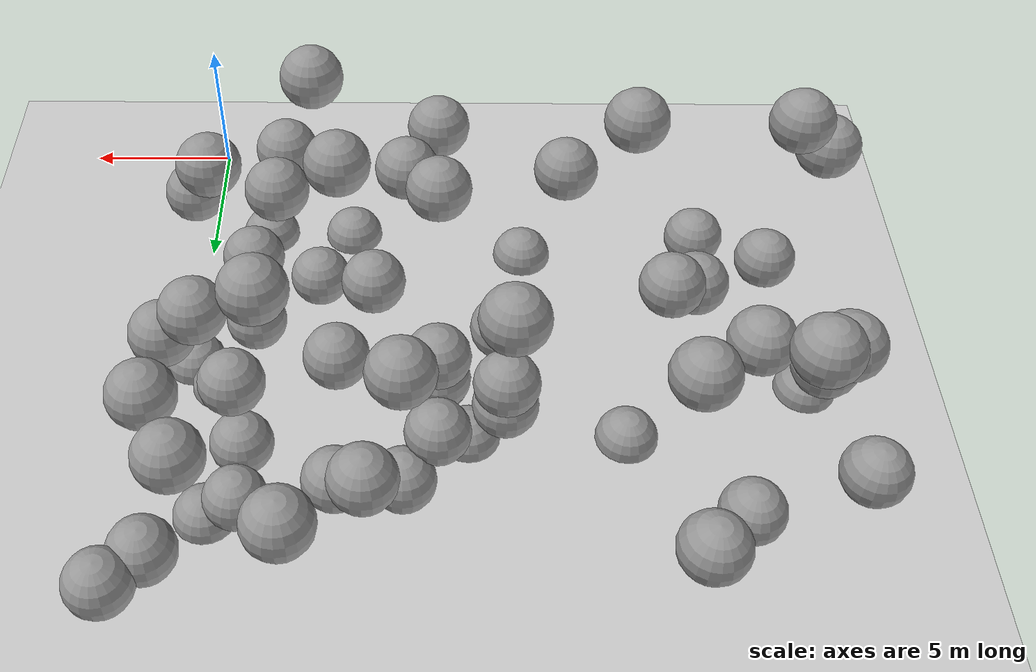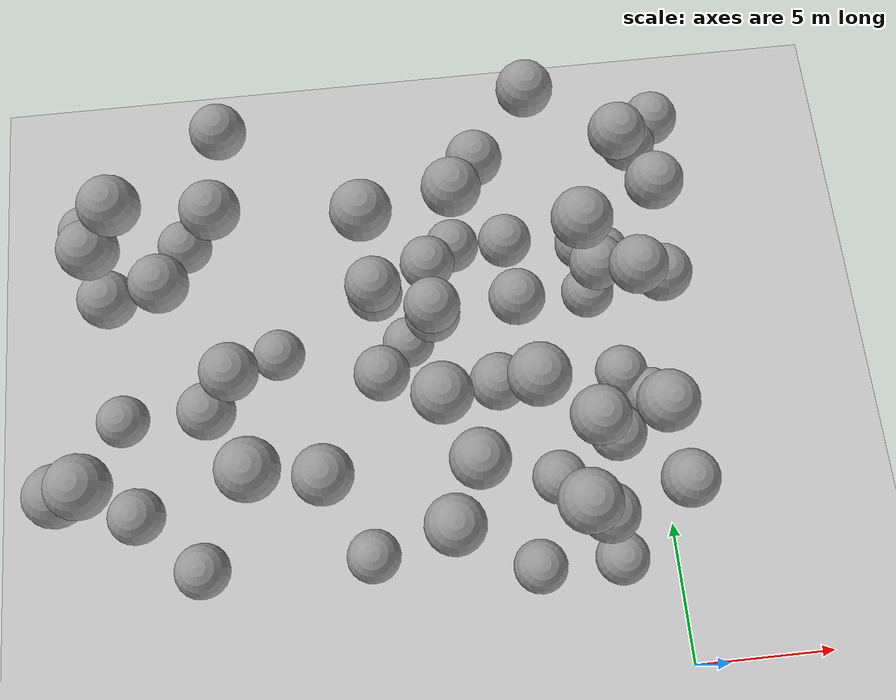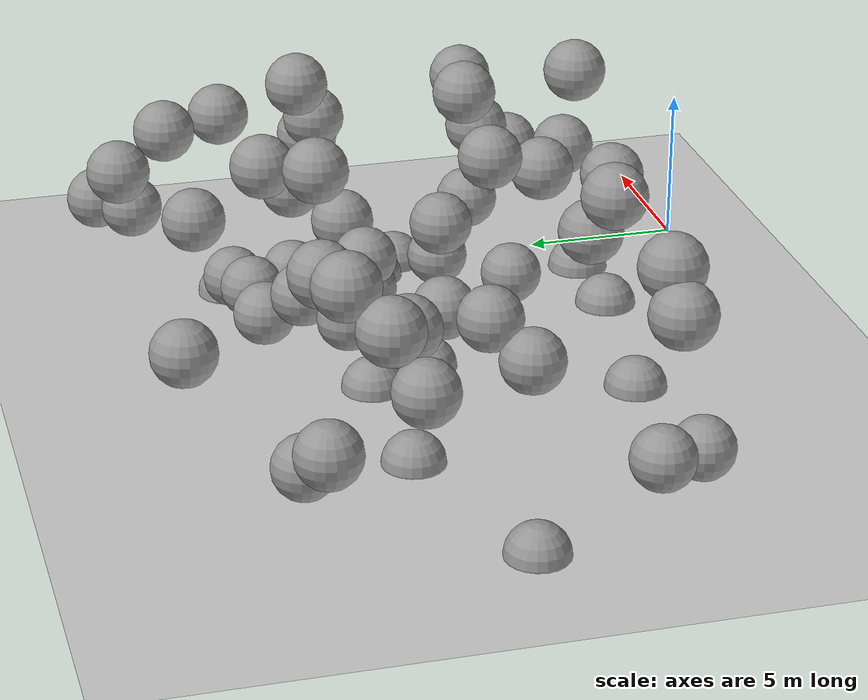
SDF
<sdf version="1.7">
 <world name="default">
  <model name="ground_plane">
   <static>1</static>
   <link name="link">
    <collision name="collision">
     <geometry><plane><normal>0 0 1</normal><size>100 100</size></plane></geometry>
     <surface>
      <contact><collide_bitmask>65535</collide_bitmask></contact>
      <friction><ode><mu>100</mu><mu2>50</mu2></ode></friction>
     </surface>
    </collision>
    <visual name="visual">
     <cast_shadows>0</cast_shadows>
     <geometry><plane><normal>0 0 1</normal><size>100 100</size></plane></geometry>
     <material>
      <script><uri>file://media/materials/scripts/gazebo.material</uri><name>Gazebo/Grey</name></script>
     </material>
    </visual>
   </link>
  </model>
  <model name="sphere_1">
   <static>1</static>
   <pose>-20 11 0 0 0 0</pose>
   <link name="link">
    <inertial>
     <mass>418.87902047863906</mass>
     <inertia>
      <ixx>167.55160819145564</ixx>
      <iyy>167.55160819145564</iyy>
      <izz>167.55160819145564</izz>
      <ixy>0</ixy>
      <ixz>0</ixz>
      <iyz>0</iyz>
     </inertia>
    </inertial>
    <collision name="collision"><geometry><sphere><radius>1.0</radius></sphere></geometry></collision>
    <visual name="visual">
     <geometry><sphere><radius>1.0</radius></sphere></geometry>
     <material>
      <script><uri>file://media/materials/scripts/gazebo.material</uri><name>Gazebo/Grey</name></script>
     </material>
    </visual>
   </link>
  </model>
  <model name="sphere_4">
   <static>1</static>
   <pose>-4 5 8 0 0 0</pose>
   <link name="link">
    <inertial>
     <mass>418.87902047863906</mass>
     <inertia>
      <ixx>167.55160819145564</ixx>
      <iyy>167.55160819145564</iyy>
      <izz>167.55160819145564</izz>
      <ixy>0</ixy>
      <ixz>0</ixz>
      <iyz>0</iyz>
     </inertia>
    </inertial>
    <collision name="collision"><geometry><sphere><radius>1.0</radius></sphere></geometry></collision>
    <visual name="visual">
     <geometry><sphere><radius>1.0</radius></sphere></geometry>
     <material>
      <script><uri>file://media/materials/scripts/gazebo.material</uri><name>Gazebo/Grey</name></script>
     </material>
    </visual>
   </link>
  </model>
  <model name="sphere_5">
   <static>1</static>
   <pose>-8 11 0 0 0 0</pose>
   <link name="link">
    <inertial>
     <mass>418.87902047863906</mass>
     <inertia>
      <ixx>167.55160819145564</ixx>
      <iyy>167.55160819145564</iyy>
      <izz>167.55160819145564</izz>
      <ixy>0</ixy>
      <ixz>0</ixz>
      <iyz>0</iyz>
     </inertia>
    </inertial>
    <collision name="collision"><geometry><sphere><radius>1.0</radius></sphere></geometry></collision>
    <visual name="visual">
     <geometry><sphere><radius>1.0</radius></sphere></geometry>
     <material>
      <script><uri>file://media/materials/scripts/gazebo.material</uri><name>Gazebo/Grey</name></script>
     </material>
    </visual>
   </link>
  </model>
  <model name="sphere_7">
   <static>1</static>
   <pose>-2 4 0 0 0 0</pose>
   <link name="link">
    <inertial>
     <mass>418.87902047863906</mass>
     <inertia>
      <ixx>167.55160819145564</ixx>
      <iyy>167.55160819145564</iyy>
      <izz>167.55160819145564</izz>
      <ixy>0</ixy>
      <ixz>0</ixz>
      <iyz>0</iyz>
     </inertia>
    </inertial>
    <collision name="collision"><geometry><sphere><radius>1.0</radius></sphere></geometry></collision>
    <visual name="visual">
     <geometry><sphere><radius>1.0</radius></sphere></geometry>
     <material>
      <script><uri>file://media/materials/scripts/gazebo.material</uri><name>Gazebo/Grey</name></script>
     </material>
    </visual>
   </link>
  </model>
  <model name="sphere_9">
   <static>1</static>
   <pose>-3 14 8 0 0 0</pose>
   <link name="link">
    <inertial>
     <mass>418.87902047863906</mass>
     <inertia>
      <ixx>167.55160819145564</ixx>
      <iyy>167.55160819145564</iyy>
      <izz>167.55160819145564</izz>
      <ixy>0</ixy>
      <ixz>0</ixz>
      <iyz>0</iyz>
     </inertia>
    </inertial>
    <collision name="collision"><geometry><sphere><radius>1.0</radius></sphere></geometry></collision>
    <visual name="visual">
     <geometry><sphere><radius>1.0</radius></sphere></geometry>
     <material>
      <script><uri>file://media/materials/scripts/gazebo.material</uri><name>Gazebo/Grey</name></script>
     </material>
    </visual>
   </link>
  </model>
  <model name="sphere_12">
   <static>1</static>
   <pose>1 20 3 0 0 0</pose>
   <link name="link">
    <inertial>
     <mass>418.87902047863906</mass>
     <inertia>
      <ixx>167.55160819145564</ixx>
      <iyy>167.55160819145564</iyy>
      <izz>167.55160819145564</izz>
      <ixy>0</ixy>
      <ixz>0</ixz>
      <iyz>0</iyz>
     </inertia>
    </inertial>
    <collision name="collision"><geometry><sphere><radius>1.0</radius></sphere></geometry></collision>
    <visual name="visual">
     <geometry><sphere><radius>1.0</radius></sphere></geometry>
     <material>
      <script><uri>file://media/materials/scripts/gazebo.material</uri><name>Gazebo/Grey</name></script>
     </material>
    </visual>
   </link>
  </model>
  <model name="sphere_14">
   <static>1</static>
   <pose>-5 13 4 0 0 0</pose>
   <link name="link">
    <inertial>
     <mass>418.87902047863906</mass>
     <inertia>
      <ixx>167.55160819145564</ixx>
      <iyy>167.55160819145564</iyy>
      <izz>167.55160819145564</izz>
      <ixy>0</ixy>
      <ixz>0</ixz>
      <iyz>0</iyz>
     </inertia>
    </inertial>
    <collision name="collision"><geometry><sphere><radius>1.0</radius></sphere></geometry></collision>
    <visual name="visual">
     <geometry><sphere><radius>1.0</radius></sphere></geometry>
     <material>
      <script><uri>file://media/materials/scripts/gazebo.material</uri><name>Gazebo/Grey</name></script>
     </material>
    </visual>
   </link>
  </model>
  <model name="sphere_17">
   <static>1</static>
   <pose>-19 7 8 0 0 0</pose>
   <link name="link">
    <inertial>
     <mass>418.87902047863906</mass>
     <inertia>
      <ixx>167.55160819145564</ixx>
      <iyy>167.55160819145564</iyy>
      <izz>167.55160819145564</izz>
      <ixy>0</ixy>
      <ixz>0</ixz>
      <iyz>0</iyz>
     </inertia>
    </inertial>
    <collision name="collision"><geometry><sphere><radius>1.0</radius></sphere></geometry></collision>
    <visual name="visual">
     <geometry><sphere><radius>1.0</radius></sphere></geometry>
     <material>
      <script><uri>file://media/materials/scripts/gazebo.material</uri><name>Gazebo/Grey</name></script>
     </material>
    </visual>
   </link>
  </model>
  <model name="sphere_25">
   <static>1</static>
   <pose>-1 8 7 0 0 0</pose>
   <link name="link">
    <inertial>
     <mass>418.87902047863906</mass>
     <inertia>
      <ixx>167.55160819145564</ixx>
      <iyy>167.55160819145564</iyy>
      <izz>167.55160819145564</izz>
      <ixy>0</ixy>
      <ixz>0</ixz>
      <iyz>0</iyz>
     </inertia>
    </inertial>
    <collision name="collision"><geometry><sphere><radius>1.0</radius></sphere></geometry></collision>
    <visual name="visual">
     <geometry><sphere><radius>1.0</radius></sphere></geometry>
     <material>
      <script><uri>file://media/materials/scripts/gazebo.material</uri><name>Gazebo/Grey</name></script>
     </material>
    </visual>
   </link>
  </model>
  <model name="sphere_27">
   <static>1</static>
   <pose>-1 13 6 0 0 0</pose>
   <link name="link">
    <inertial>
     <mass>418.87902047863906</mass>
     <inertia>
      <ixx>167.55160819145564</ixx>
      <iyy>167.55160819145564</iyy>
      <izz>167.55160819145564</izz>
      <ixy>0</ixy>
      <ixz>0</ixz>
      <iyz>0</iyz>
     </inertia>
    </inertial>
    <collision name="collision"><geometry><sphere><radius>1.0</radius></sphere></geometry></collision>
    <visual name="visual">
     <geometry><sphere><radius>1.0</radius></sphere></geometry>
     <material>
      <script><uri>file://media/materials/scripts/gazebo.material</uri><name>Gazebo/Grey</name></script>
     </material>
    </visual>
   </link>
  </model>
  <model name="sphere_28">
   <static>1</static>
   <pose>-3 8 6 0 0 0</pose>
   <link name="link">
    <inertial>
     <mass>418.87902047863906</mass>
     <inertia>
      <ixx>167.55160819145564</ixx>
      <iyy>167.55160819145564</iyy>
      <izz>167.55160819145564</izz>
      <ixy>0</ixy>
      <ixz>0</ixz>
      <iyz>0</iyz>
     </inertia>
    </inertial>
    <collision name="collision"><geometry><sphere><radius>1.0</radius></sphere></geometry></collision>
    <visual name="visual">
     <geometry><sphere><radius>1.0</radius></sphere></geometry>
     <material>
      <script><uri>file://media/materials/scripts/gazebo.material</uri><name>Gazebo/Grey</name></script>
     </material>
    </visual>
   </link>
  </model>
  <model name="sphere_34">
   <static>1</static>
   <pose>-17 17 2 0 0 0</pose>
   <link name="link">
    <inertial>
     <mass>418.87902047863906</mass>
     <inertia>
      <ixx>167.55160819145564</ixx>
      <iyy>167.55160819145564</iyy>
      <izz>167.55160819145564</izz>
      <ixy>0</ixy>
      <ixz>0</ixz>
      <iyz>0</iyz>
     </inertia>
    </inertial>
    <collision name="collision"><geometry><sphere><radius>1.0</radius></sphere></geometry></collision>
    <visual name="visual">
     <geometry><sphere><radius>1.0</radius></sphere></geometry>
     <material>
      <script><uri>file://media/materials/scripts/gazebo.material</uri><name>Gazebo/Grey</name></script>
     </material>
    </visual>
   </link>
  </model>
  <model name="sphere_39">
   <static>1</static>
   <pose>-15 20 5 0 0 0</pose>
   <link name="link">
    <inertial>
     <mass>418.87902047863906</mass>
     <inertia>
      <ixx>167.55160819145564</ixx>
      <iyy>167.55160819145564</iyy>
      <izz>167.55160819145564</izz>
      <ixy>0</ixy>
      <ixz>0</ixz>
      <iyz>0</iyz>
     </inertia>
    </inertial>
    <collision name="collision"><geometry><sphere><radius>1.0</radius></sphere></geometry></collision>
    <visual name="visual">
     <geometry><sphere><radius>1.0</radius></sphere></geometry>
     <material>
      <script><uri>file://media/materials/scripts/gazebo.material</uri><name>Gazebo/Grey</name></script>
     </material>
    </visual>
   </link>
  </model>
  <model name="sphere_41">
   <static>1</static>
   <pose>-1 11 0 0 0 0</pose>
   <link name="link">
    <inertial>
     <mass>418.87902047863906</mass>
     <inertia>
      <ixx>167.55160819145564</ixx>
      <iyy>167.55160819145564</iyy>
      <izz>167.55160819145564</izz>
      <ixy>0</ixy>
      <ixz>0</ixz>
      <iyz>0</iyz>
     </inertia>
    </inertial>
    <collision name="collision"><geometry><sphere><radius>1.0</radius></sphere></geometry></collision>
    <visual name="visual">
     <geometry><sphere><radius>1.0</radius></sphere></geometry>
     <material>
      <script><uri>file://media/materials/scripts/gazebo.material</uri><name>Gazebo/Grey</name></script>
     </material>
    </visual>
   </link>
  </model>
  <model name="sphere_42">
   <static>1</static>
   <pose>-3 5 5 0 0 0</pose>
   <link name="link">
    <inertial>
     <mass>418.87902047863906</mass>
     <inertia>
      <ixx>167.55160819145564</ixx>
      <iyy>167.55160819145564</iyy>
      <izz>167.55160819145564</izz>
      <ixy>0</ixy>
      <ixz>0</ixz>
      <iyz>0</iyz>
     </inertia>
    </inertial>
    <collision name="collision"><geometry><sphere><radius>1.0</radius></sphere></geometry></collision>
    <visual name="visual">
     <geometry><sphere><radius>1.0</radius></sphere></geometry>
     <material>
      <script><uri>file://media/materials/scripts/gazebo.material</uri><name>Gazebo/Grey</name></script>
     </material>
    </visual>
   </link>
  </model>
  <model name="sphere_43">
   <static>1</static>
   <pose>-5 16 2 0 0 0</pose>
   <link name="link">
    <inertial>
     <mass>418.87902047863906</mass>
     <inertia>
      <ixx>167.55160819145564</ixx>
      <iyy>167.55160819145564</iyy>
      <izz>167.55160819145564</izz>
      <ixy>0</ixy>
      <ixz>0</ixz>
      <iyz>0</iyz>
     </inertia>
    </inertial>
    <collision name="collision"><geometry><sphere><radius>1.0</radius></sphere></geometry></collision>
    <visual name="visual">
     <geometry><sphere><radius>1.0</radius></sphere></geometry>
     <material>
      <script><uri>file://media/materials/scripts/gazebo.material</uri><name>Gazebo/Grey</name></script>
     </material>
    </visual>
   </link>
  </model>
  <model name="sphere_46">
   <static>1</static>
   <pose>0 13 5 0 0 0</pose>
   <link name="link">
    <inertial>
     <mass>418.87902047863906</mass>
     <inertia>
      <ixx>167.55160819145564</ixx>
      <iyy>167.55160819145564</iyy>
      <izz>167.55160819145564</izz>
      <ixy>0</ixy>
      <ixz>0</ixz>
      <iyz>0</iyz>
     </inertia>
    </inertial>
    <collision name="collision"><geometry><sphere><radius>1.0</radius></sphere></geometry></collision>
    <visual name="visual">
     <geometry><sphere><radius>1.0</radius></sphere></geometry>
     <material>
      <script><uri>file://media/materials/scripts/gazebo.material</uri><name>Gazebo/Grey</name></script>
     </material>
    </visual>
   </link>
  </model>
  <model name="sphere_47">
   <static>1</static>
   <pose>-4 20 6 0 0 0</pose>
   <link name="link">
    <inertial>
     <mass>418.87902047863906</mass>
     <inertia>
      <ixx>167.55160819145564</ixx>
      <iyy>167.55160819145564</iyy>
      <izz>167.55160819145564</izz>
      <ixy>0</ixy>
      <ixz>0</ixz>
      <iyz>0</iyz>
     </inertia>
    </inertial>
    <collision name="collision"><geometry><sphere><radius>1.0</radius></sphere></geometry></collision>
    <visual name="visual">
     <geometry><sphere><radius>1.0</radius></sphere></geometry>
     <material>
      <script><uri>file://media/materials/scripts/gazebo.material</uri><name>Gazebo/Grey</name></script>
     </material>
    </visual>
   </link>
  </model>
  <model name="sphere_52">
   <static>1</static>
   <pose>-2 9 1 0 0 0</pose>
   <link name="link">
    <inertial>
     <mass>418.87902047863906</mass>
     <inertia>
      <ixx>167.55160819145564</ixx>
      <iyy>167.55160819145564</iyy>
      <izz>167.55160819145564</izz>
      <ixy>0</ixy>
      <ixz>0</ixz>
      <iyz>0</iyz>
     </inertia>
    </inertial>
    <collision name="collision"><geometry><sphere><radius>1.0</radius></sphere></geometry></collision>
    <visual name="visual">
     <geometry><sphere><radius>1.0</radius></sphere></geometry>
     <material>
      <script><uri>file://media/materials/scripts/gazebo.material</uri><name>Gazebo/Grey</name></script>
     </material>
    </visual>
   </link>
  </model>
  <model name="sphere_59">
   <static>1</static>
   <pose>-18 16 8 0 0 0</pose>
   <link name="link">
    <inertial>
     <mass>418.87902047863906</mass>
     <inertia>
      <ixx>167.55160819145564</ixx>
      <iyy>167.55160819145564</iyy>
      <izz>167.55160819145564</izz>
      <ixy>0</ixy>
      <ixz>0</ixz>
      <iyz>0</iyz>
     </inertia>
    </inertial>
    <collision name="collision"><geometry><sphere><radius>1.0</radius></sphere></geometry></collision>
    <visual name="visual">
     <geometry><sphere><radius>1.0</radius></sphere></geometry>
     <material>
      <script><uri>file://media/materials/scripts/gazebo.material</uri><name>Gazebo/Grey</name></script>
     </material>
    </visual>
   </link>
  </model>
  <model name="sphere_64">
   <static>1</static>
   <pose>-14 7 8 0 0 0</pose>
   <link name="link">
    <inertial>
     <mass>418.87902047863906</mass>
     <inertia>
      <ixx>167.55160819145564</ixx>
      <iyy>167.55160819145564</iyy>
      <izz>167.55160819145564</izz>
      <ixy>0</ixy>
      <ixz>0</ixz>
      <iyz>0</iyz>
     </inertia>
    </inertial>
    <collision name="collision"><geometry><sphere><radius>1.0</radius></sphere></geometry></collision>
    <visual name="visual">
     <geometry><sphere><radius>1.0</radius></sphere></geometry>
     <material>
      <script><uri>file://media/materials/scripts/gazebo.material</uri><name>Gazebo/Grey</name></script>
     </material>
    </visual>
   </link>
  </model>
  <model name="sphere_69">
   <static>1</static>
   <pose>-10 11 3 0 0 0</pose>
   <link name="link">
    <inertial>
     <mass>418.87902047863906</mass>
     <inertia>
      <ixx>167.55160819145564</ixx>
      <iyy>167.55160819145564</iyy>
      <izz>167.55160819145564</izz>
      <ixy>0</ixy>
      <ixz>0</ixz>
      <iyz>0</iyz>
     </inertia>
    </inertial>
    <collision name="collision"><geometry><sphere><radius>1.0</radius></sphere></geometry></collision>
    <visual name="visual">
     <geometry><sphere><radius>1.0</radius></sphere></geometry>
     <material>
      <script><uri>file://media/materials/scripts/gazebo.material</uri><name>Gazebo/Grey</name></script>
     </material>
    </visual>
   </link>
  </model>
  <model name="sphere_70">
   <static>1</static>
   <pose>-2 14 4 0 0 0</pose>
   <link name="link">
    <inertial>
     <mass>418.87902047863906</mass>
     <inertia>
      <ixx>167.55160819145564</ixx>
      <iyy>167.55160819145564</iyy>
      <izz>167.55160819145564</izz>
      <ixy>0</ixy>
      <ixz>0</ixz>
      <iyz>0</iyz>
     </inertia>
    </inertial>
    <collision name="collision"><geometry><sphere><radius>1.0</radius></sphere></geometry></collision>
    <visual name="visual">
     <geometry><sphere><radius>1.0</radius></sphere></geometry>
     <material>
      <script><uri>file://media/materials/scripts/gazebo.material</uri><name>Gazebo/Grey</name></script>
     </material>
    </visual>
   </link>
  </model>
  <model name="sphere_75">
   <static>1</static>
   <pose>0 10 0 0 0 0</pose>
   <link name="link">
    <inertial>
     <mass>418.87902047863906</mass>
     <inertia>
      <ixx>167.55160819145564</ixx>
      <iyy>167.55160819145564</iyy>
      <izz>167.55160819145564</izz>
      <ixy>0</ixy>
      <ixz>0</ixz>
      <iyz>0</iyz>
     </inertia>
    </inertial>
    <collision name="collision"><geometry><sphere><radius>1.0</radius></sphere></geometry></collision>
    <visual name="visual">
     <geometry><sphere><radius>1.0</radius></sphere></geometry>
     <material>
      <script><uri>file://media/materials/scripts/gazebo.material</uri><name>Gazebo/Grey</name></script>
     </material>
    </visual>
   </link>
  </model>
  <model name="sphere_77">
   <static>1</static>
   <pose>-19 7 2 0 0 0</pose>
   <link name="link">
    <inertial>
     <mass>418.87902047863906</mass>
     <inertia>
      <ixx>167.55160819145564</ixx>
      <iyy>167.55160819145564</iyy>
      <izz>167.55160819145564</izz>
      <ixy>0</ixy>
      <ixz>0</ixz>
      <iyz>0</iyz>
     </inertia>
    </inertial>
    <collision name="collision"><geometry><sphere><radius>1.0</radius></sphere></geometry></collision>
    <visual name="visual">
     <geometry><sphere><radius>1.0</radius></sphere></geometry>
     <material>
      <script><uri>file://media/materials/scripts/gazebo.material</uri><name>Gazebo/Grey</name></script>
     </material>
    </visual>
   </link>
  </model>
  <model name="sphere_78">
   <static>1</static>
   <pose>-7 7 6 0 0 0</pose>
   <link name="link">
    <inertial>
     <mass>418.87902047863906</mass>
     <inertia>
      <ixx>167.55160819145564</ixx>
      <iyy>167.55160819145564</iyy>
      <izz>167.55160819145564</izz>
      <ixy>0</ixy>
      <ixz>0</ixz>
      <iyz>0</iyz>
     </inertia>
    </inertial>
    <collision name="collision"><geometry><sphere><radius>1.0</radius></sphere></geometry></collision>
    <visual name="visual">
     <geometry><sphere><radius>1.0</radius></sphere></geometry>
     <material>
      <script><uri>file://media/materials/scripts/gazebo.material</uri><name>Gazebo/Grey</name></script>
     </material>
    </visual>
   </link>
  </model>
  <model name="sphere_79">
   <static>1</static>
   <pose>-19 15 7 0 0 0</pose>
   <link name="link">
    <inertial>
     <mass>418.87902047863906</mass>
     <inertia>
      <ixx>167.55160819145564</ixx>
      <iyy>167.55160819145564</iyy>
      <izz>167.55160819145564</izz>
      <ixy>0</ixy>
      <ixz>0</ixz>
      <iyz>0</iyz>
     </inertia>
    </inertial>
    <collision name="collision"><geometry><sphere><radius>1.0</radius></sphere></geometry></collision>
    <visual name="visual">
     <geometry><sphere><radius>1.0</radius></sphere></geometry>
     <material>
      <script><uri>file://media/materials/scripts/gazebo.material</uri><name>Gazebo/Grey</name></script>
     </material>
    </visual>
   </link>
  </model>
  <model name="sphere_88">
   <static>1</static>
   <pose>-14 13 0 0 0 0</pose>
   <link name="link">
    <inertial>
     <mass>418.87902047863906</mass>
     <inertia>
      <ixx>167.55160819145564</ixx>
      <iyy>167.55160819145564</iyy>
      <izz>167.55160819145564</izz>
      <ixy>0</ixy>
      <ixz>0</ixz>
      <iyz>0</iyz>
     </inertia>
    </inertial>
    <collision name="collision"><geometry><sphere><radius>1.0</radius></sphere></geometry></collision>
    <visual name="visual">
     <geometry><sphere><radius>1.0</radius></sphere></geometry>
     <material>
      <script><uri>file://media/materials/scripts/gazebo.material</uri><name>Gazebo/Grey</name></script>
     </material>
    </visual>
   </link>
  </model>
  <model name="sphere_89">
   <static>1</static>
   <pose>-7 16 7 0 0 0</pose>
   <link name="link">
    <inertial>
     <mass>418.87902047863906</mass>
     <inertia>
      <ixx>167.55160819145564</ixx>
      <iyy>167.55160819145564</iyy>
      <izz>167.55160819145564</izz>
      <ixy>0</ixy>
      <ixz>0</ixz>
      <iyz>0</iyz>
     </inertia>
    </inertial>
    <collision name="collision"><geometry><sphere><radius>1.0</radius></sphere></geometry></collision>
    <visual name="visual">
     <geometry><sphere><radius>1.0</radius></sphere></geometry>
     <material>
      <script><uri>file://media/materials/scripts/gazebo.material</uri><name>Gazebo/Grey</name></script>
     </material>
    </visual>
   </link>
  </model>
  <model name="sphere_92">
   <static>1</static>
   <pose>-10 15 8 0 0 0</pose>
   <link name="link">
    <inertial>
     <mass>418.87902047863906</mass>
     <inertia>
      <ixx>167.55160819145564</ixx>
      <iyy>167.55160819145564</iyy>
      <izz>167.55160819145564</izz>
      <ixy>0</ixy>
      <ixz>0</ixz>
      <iyz>0</iyz>
     </inertia>
    </inertial>
    <collision name="collision"><geometry><sphere><radius>1.0</radius></sphere></geometry></collision>
    <visual name="visual">
     <geometry><sphere><radius>1.0</radius></sphere></geometry>
     <material>
      <script><uri>file://media/materials/scripts/gazebo.material</uri><name>Gazebo/Grey</name></script>
     </material>
    </visual>
   </link>
  </model>
  <model name="sphere_107">
   <static>1</static>
   <pose>-8 15 3 0 0 0</pose>
   <link name="link">
    <inertial>
     <mass>418.87902047863906</mass>
     <inertia>
      <ixx>167.55160819145564</ixx>
      <iyy>167.55160819145564</iyy>
      <izz>167.55160819145564</izz>
      <ixy>0</ixy>
      <ixz>0</ixz>
      <iyz>0</iyz>
     </inertia>
    </inertial>
    <collision name="collision"><geometry><sphere><radius>1.0</radius></sphere></geometry></collision>
    <visual name="visual">
     <geometry><sphere><radius>1.0</radius></sphere></geometry>
     <material>
      <script><uri>file://media/materials/scripts/gazebo.material</uri><name>Gazebo/Grey</name></script>
     </material>
    </visual>
   </link>
  </model>
  <model name="sphere_115">
   <static>1</static>
   <pose>-6 18 5 0 0 0</pose>
   <link name="link">
    <inertial>
     <mass>418.87902047863906</mass>
     <inertia>
      <ixx>167.55160819145564</ixx>
      <iyy>167.55160819145564</iyy>
      <izz>167.55160819145564</izz>
      <ixy>0</ixy>
      <ixz>0</ixz>
      <iyz>0</iyz>
     </inertia>
    </inertial>
    <collision name="collision"><geometry><sphere><radius>1.0</radius></sphere></geometry></collision>
    <visual name="visual">
     <geometry><sphere><radius>1.0</radius></sphere></geometry>
     <material>
      <script><uri>file://media/materials/scripts/gazebo.material</uri><name>Gazebo/Grey</name></script>
     </material>
    </visual>
   </link>
  </model>
  <model name="sphere_116">
   <static>1</static>
   <pose>-8 13 3 0 0 0</pose>
   <link name="link">
    <inertial>
     <mass>418.87902047863906</mass>
     <inertia>
      <ixx>167.55160819145564</ixx>
      <iyy>167.55160819145564</iyy>
      <izz>167.55160819145564</izz>
      <ixy>0</ixy>
      <ixz>0</ixz>
      <iyz>0</iyz>
     </inertia>
    </inertial>
    <collision name="collision"><geometry><sphere><radius>1.0</radius></sphere></geometry></collision>
    <visual name="visual">
     <geometry><sphere><radius>1.0</radius></sphere></geometry>
     <material>
      <script><uri>file://media/materials/scripts/gazebo.material</uri><name>Gazebo/Grey</name></script>
     </material>
    </visual>
   </link>
  </model>
  <model name="sphere_119">
   <static>1</static>
   <pose>0 16 6 0 0 0</pose>
   <link name="link">
    <inertial>
     <mass>418.87902047863906</mass>
     <inertia>
      <ixx>167.55160819145564</ixx>
      <iyy>167.55160819145564</iyy>
      <izz>167.55160819145564</izz>
      <ixy>0</ixy>
      <ixz>0</ixz>
      <iyz>0</iyz>
     </inertia>
    </inertial>
    <collision name="collision"><geometry><sphere><radius>1.0</radius></sphere></geometry></collision>
    <visual name="visual">
     <geometry><sphere><radius>1.0</radius></sphere></geometry>
     <material>
      <script><uri>file://media/materials/scripts/gazebo.material</uri><name>Gazebo/Grey</name></script>
     </material>
    </visual>
   </link>
  </model>
  <model name="sphere_123">
   <static>1</static>
   <pose>-8 5 6 0 0 0</pose>
   <link name="link">
    <inertial>
     <mass>418.87902047863906</mass>
     <inertia>
      <ixx>167.55160819145564</ixx>
      <iyy>167.55160819145564</iyy>
      <izz>167.55160819145564</izz>
      <ixy>0</ixy>
      <ixz>0</ixz>
      <iyz>0</iyz>
     </inertia>
    </inertial>
    <collision name="collision"><geometry><sphere><radius>1.0</radius></sphere></geometry></collision>
    <visual name="visual">
     <geometry><sphere><radius>1.0</radius></sphere></geometry>
     <material>
      <script><uri>file://media/materials/scripts/gazebo.material</uri><name>Gazebo/Grey</name></script>
     </material>
    </visual>
   </link>
  </model>
  <model name="sphere_133">
   <static>1</static>
   <pose>-6 10 4 0 0 0</pose>
   <link name="link">
    <inertial>
     <mass>418.87902047863906</mass>
     <inertia>
      <ixx>167.55160819145564</ixx>
      <iyy>167.55160819145564</iyy>
      <izz>167.55160819145564</izz>
      <ixy>0</ixy>
      <ixz>0</ixz>
      <iyz>0</iyz>
     </inertia>
    </inertial>
    <collision name="collision"><geometry><sphere><radius>1.0</radius></sphere></geometry></collision>
    <visual name="visual">
     <geometry><sphere><radius>1.0</radius></sphere></geometry>
     <material>
      <script><uri>file://media/materials/scripts/gazebo.material</uri><name>Gazebo/Grey</name></script>
     </material>
    </visual>
   </link>
  </model>
  <model name="sphere_135">
   <static>1</static>
   <pose>-20 7 7 0 0 0</pose>
   <link name="link">
    <inertial>
     <mass>418.87902047863906</mass>
     <inertia>
      <ixx>167.55160819145564</ixx>
      <iyy>167.55160819145564</iyy>
      <izz>167.55160819145564</izz>
      <ixy>0</ixy>
      <ixz>0</ixz>
      <iyz>0</iyz>
     </inertia>
    </inertial>
    <collision name="collision"><geometry><sphere><radius>1.0</radius></sphere></geometry></collision>
    <visual name="visual">
     <geometry><sphere><radius>1.0</radius></sphere></geometry>
     <material>
      <script><uri>file://media/materials/scripts/gazebo.material</uri><name>Gazebo/Grey</name></script>
     </material>
    </visual>
   </link>
  </model>
  <model name="sphere_137">
   <static>1</static>
   <pose>-20 17 4 0 0 0</pose>
   <link name="link">
    <inertial>
     <mass>418.87902047863906</mass>
     <inertia>
      <ixx>167.55160819145564</ixx>
      <iyy>167.55160819145564</iyy>
      <izz>167.55160819145564</izz>
      <ixy>0</ixy>
      <ixz>0</ixz>
      <iyz>0</iyz>
     </inertia>
    </inertial>
    <collision name="collision"><geometry><sphere><radius>1.0</radius></sphere></geometry></collision>
    <visual name="visual">
     <geometry><sphere><radius>1.0</radius></sphere></geometry>
     <material>
      <script><uri>file://media/materials/scripts/gazebo.material</uri><name>Gazebo/Grey</name></script>
     </material>
    </visual>
   </link>
  </model>
  <model name="sphere_145">
   <static>1</static>
   <pose>-2 16 1 0 0 0</pose>
   <link name="link">
    <inertial>
     <mass>418.87902047863906</mass>
     <inertia>
      <ixx>167.55160819145564</ixx>
      <iyy>167.55160819145564</iyy>
      <izz>167.55160819145564</izz>
      <ixy>0</ixy>
      <ixz>0</ixz>
      <iyz>0</iyz>
     </inertia>
    </inertial>
    <collision name="collision"><geometry><sphere><radius>1.0</radius></sphere></geometry></collision>
    <visual name="visual">
     <geometry><sphere><radius>1.0</radius></sphere></geometry>
     <material>
      <script><uri>file://media/materials/scripts/gazebo.material</uri><name>Gazebo/Grey</name></script>
     </material>
    </visual>
   </link>
  </model>
  <model name="sphere_148">
   <static>1</static>
   <pose>-4 7 1 0 0 0</pose>
   <link name="link">
    <inertial>
     <mass>418.87902047863906</mass>
     <inertia>
      <ixx>167.55160819145564</ixx>
      <iyy>167.55160819145564</iyy>
      <izz>167.55160819145564</izz>
      <ixy>0</ixy>
      <ixz>0</ixz>
      <iyz>0</iyz>
     </inertia>
    </inertial>
    <collision name="collision"><geometry><sphere><radius>1.0</radius></sphere></geometry></collision>
    <visual name="visual">
     <geometry><sphere><radius>1.0</radius></sphere></geometry>
     <material>
      <script><uri>file://media/materials/scripts/gazebo.material</uri><name>Gazebo/Grey</name></script>
     </material>
    </visual>
   </link>
  </model>
  <model name="sphere_150">
   <static>1</static>
   <pose>-10 14 4 0 0 0</pose>
   <link name="link">
    <inertial>
     <mass>418.87902047863906</mass>
     <inertia>
      <ixx>167.55160819145564</ixx>
      <iyy>167.55160819145564</iyy>
      <izz>167.55160819145564</izz>
      <ixy>0</ixy>
      <ixz>0</ixz>
      <iyz>0</iyz>
     </inertia>
    </inertial>
    <collision name="collision"><geometry><sphere><radius>1.0</radius></sphere></geometry></collision>
    <visual name="visual">
     <geometry><sphere><radius>1.0</radius></sphere></geometry>
     <material>
      <script><uri>file://media/materials/scripts/gazebo.material</uri><name>Gazebo/Grey</name></script>
     </material>
    </visual>
   </link>
  </model>
  <model name="sphere_155">
   <static>1</static>
   <pose>-5 4 0 0 0 0</pose>
   <link name="link">
    <inertial>
     <mass>418.87902047863906</mass>
     <inertia>
      <ixx>167.55160819145564</ixx>
      <iyy>167.55160819145564</iyy>
      <izz>167.55160819145564</izz>
      <ixy>0</ixy>
      <ixz>0</ixz>
      <iyz>0</iyz>
     </inertia>
    </inertial>
    <collision name="collision"><geometry><sphere><radius>1.0</radius></sphere></geometry></collision>
    <visual name="visual">
     <geometry><sphere><radius>1.0</radius></sphere></geometry>
     <material>
      <script><uri>file://media/materials/scripts/gazebo.material</uri><name>Gazebo/Grey</name></script>
     </material>
    </visual>
   </link>
  </model>
  <model name="sphere_157">
   <static>1</static>
   <pose>-7 16 2 0 0 0</pose>
   <link name="link">
    <inertial>
     <mass>418.87902047863906</mass>
     <inertia>
      <ixx>167.55160819145564</ixx>
      <iyy>167.55160819145564</iyy>
      <izz>167.55160819145564</izz>
      <ixy>0</ixy>
      <ixz>0</ixz>
      <iyz>0</iyz>
     </inertia>
    </inertial>
    <collision name="collision"><geometry><sphere><radius>1.0</radius></sphere></geometry></collision>
    <visual name="visual">
     <geometry><sphere><radius>1.0</radius></sphere></geometry>
     <material>
      <script><uri>file://media/materials/scripts/gazebo.material</uri><name>Gazebo/Grey</name></script>
     </material>
    </visual>
   </link>
  </model>
  <model name="sphere_165">
   <static>1</static>
   <pose>-8 13 4 0 0 0</pose>
   <link name="link">
    <inertial>
     <mass>418.87902047863906</mass>
     <inertia>
      <ixx>167.55160819145564</ixx>
      <iyy>167.55160819145564</iyy>
      <izz>167.55160819145564</izz>
      <ixy>0</ixy>
      <ixz>0</ixz>
      <iyz>0</iyz>
     </inertia>
    </inertial>
    <collision name="collision"><geometry><sphere><radius>1.0</radius></sphere></geometry></collision>
    <visual name="visual">
     <geometry><sphere><radius>1.0</radius></sphere></geometry>
     <material>
      <script><uri>file://media/materials/scripts/gazebo.material</uri><name>Gazebo/Grey</name></script>
     </material>
    </visual>
   </link>
  </model>
  <model name="sphere_166">
   <static>1</static>
   <pose>-8 9 7 0 0 0</pose>
   <link name="link">
    <inertial>
     <mass>418.87902047863906</mass>
     <inertia>
      <ixx>167.55160819145564</ixx>
      <iyy>167.55160819145564</iyy>
      <izz>167.55160819145564</izz>
      <ixy>0</ixy>
      <ixz>0</ixz>
      <iyz>0</iyz>
     </inertia>
    </inertial>
    <collision name="collision"><geometry><sphere><radius>1.0</radius></sphere></geometry></collision>
    <visual name="visual">
     <geometry><sphere><radius>1.0</radius></sphere></geometry>
     <material>
      <script><uri>file://media/materials/scripts/gazebo.material</uri><name>Gazebo/Grey</name></script>
     </material>
    </visual>
   </link>
  </model>
  <model name="sphere_167">
   <static>1</static>
   <pose>-19 14 5 0 0 0</pose>
   <link name="link">
    <inertial>
     <mass>418.87902047863906</mass>
     <inertia>
      <ixx>167.55160819145564</ixx>
      <iyy>167.55160819145564</iyy>
      <izz>167.55160819145564</izz>
      <ixy>0</ixy>
      <ixz>0</ixz>
      <iyz>0</iyz>
     </inertia>
    </inertial>
    <collision name="collision"><geometry><sphere><radius>1.0</radius></sphere></geometry></collision>
    <visual name="visual">
     <geometry><sphere><radius>1.0</radius></sphere></geometry>
     <material>
      <script><uri>file://media/materials/scripts/gazebo.material</uri><name>Gazebo/Grey</name></script>
     </material>
    </visual>
   </link>
  </model>
  <model name="sphere_169">
   <static>1</static>
   <pose>-1 18 6 0 0 0</pose>
   <link name="link">
    <inertial>
     <mass>418.87902047863906</mass>
     <inertia>
      <ixx>167.55160819145564</ixx>
      <iyy>167.55160819145564</iyy>
      <izz>167.55160819145564</izz>
      <ixy>0</ixy>
      <ixz>0</ixz>
      <iyz>0</iyz>
     </inertia>
    </inertial>
    <collision name="collision"><geometry><sphere><radius>1.0</radius></sphere></geometry></collision>
    <visual name="visual">
     <geometry><sphere><radius>1.0</radius></sphere></geometry>
     <material>
      <script><uri>file://media/materials/scripts/gazebo.material</uri><name>Gazebo/Grey</name></script>
     </material>
    </visual>
   </link>
  </model>
  <model name="sphere_171">
   <static>1</static>
   <pose>-12 7 6 0 0 0</pose>
   <link name="link">
    <inertial>
     <mass>418.87902047863906</mass>
     <inertia>
      <ixx>167.55160819145564</ixx>
      <iyy>167.55160819145564</iyy>
      <izz>167.55160819145564</izz>
      <ixy>0</ixy>
      <ixz>0</ixz>
      <iyz>0</iyz>
     </inertia>
    </inertial>
    <collision name="collision"><geometry><sphere><radius>1.0</radius></sphere></geometry></collision>
    <visual name="visual">
     <geometry><sphere><radius>1.0</radius></sphere></geometry>
     <material>
      <script><uri>file://media/materials/scripts/gazebo.material</uri><name>Gazebo/Grey</name></script>
     </material>
    </visual>
   </link>
  </model>
  <model name="sphere_173">
   <static>1</static>
   <pose>-1 16 0 0 0 0</pose>
   <link name="link">
    <inertial>
     <mass>418.87902047863906</mass>
     <inertia>
      <ixx>167.55160819145564</ixx>
      <iyy>167.55160819145564</iyy>
      <izz>167.55160819145564</izz>
      <ixy>0</ixy>
      <ixz>0</ixz>
      <iyz>0</iyz>
     </inertia>
    </inertial>
    <collision name="collision"><geometry><sphere><radius>1.0</radius></sphere></geometry></collision>
    <visual name="visual">
     <geometry><sphere><radius>1.0</radius></sphere></geometry>
     <material>
      <script><uri>file://media/materials/scripts/gazebo.material</uri><name>Gazebo/Grey</name></script>
     </material>
    </visual>
   </link>
  </model>
  <model name="sphere_193">
   <static>1</static>
   <pose>-17 14 6 0 0 0</pose>
   <link name="link">
    <inertial>
     <mass>418.87902047863906</mass>
     <inertia>
      <ixx>167.55160819145564</ixx>
      <iyy>167.55160819145564</iyy>
      <izz>167.55160819145564</izz>
      <ixy>0</ixy>
      <ixz>0</ixz>
      <iyz>0</iyz>
     </inertia>
    </inertial>
    <collision name="collision"><geometry><sphere><radius>1.0</radius></sphere></geometry></collision>
    <visual name="visual">
     <geometry><sphere><radius>1.0</radius></sphere></geometry>
     <material>
      <script><uri>file://media/materials/scripts/gazebo.material</uri><name>Gazebo/Grey</name></script>
     </material>
    </visual>
   </link>
  </model>
  <model name="sphere_200">
   <static>1</static>
   <pose>-17 14 6 0 0 0</pose>
   <link name="link">
    <inertial>
     <mass>418.87902047863906</mass>
     <inertia>
      <ixx>167.55160819145564</ixx>
      <iyy>167.55160819145564</iyy>
      <izz>167.55160819145564</izz>
      <ixy>0</ixy>
      <ixz>0</ixz>
      <iyz>0</iyz>
     </inertia>
    </inertial>
    <collision name="collision"><geometry><sphere><radius>1.0</radius></sphere></geometry></collision>
    <visual name="visual">
     <geometry><sphere><radius>1.0</radius></sphere></geometry>
     <material>
      <script><uri>file://media/materials/scripts/gazebo.material</uri><name>Gazebo/Grey</name></script>
     </material>
    </visual>
   </link>
  </model>
  <model name="sphere_206">
   <static>1</static>
   <pose>-17 5 1 0 0 0</pose>
   <link name="link">
    <inertial>
     <mass>418.87902047863906</mass>
     <inertia>
      <ixx>167.55160819145564</ixx>
      <iyy>167.55160819145564</iyy>
      <izz>167.55160819145564</izz>
      <ixy>0</ixy>
      <ixz>0</ixz>
      <iyz>0</iyz>
     </inertia>
    </inertial>
    <collision name="collision"><geometry><sphere><radius>1.0</radius></sphere></geometry></collision>
    <visual name="visual">
     <geometry><sphere><radius>1.0</radius></sphere></geometry>
     <material>
      <script><uri>file://media/materials/scripts/gazebo.material</uri><name>Gazebo/Grey</name></script>
     </material>
    </visual>
   </link>
  </model>
  <model name="sphere_211">
   <static>1</static>
   <pose>-2 8 3 0 0 0</pose>
   <link name="link">
    <inertial>
     <mass>418.87902047863906</mass>
     <inertia>
      <ixx>167.55160819145564</ixx>
      <iyy>167.55160819145564</iyy>
      <izz>167.55160819145564</izz>
      <ixy>0</ixy>
      <ixz>0</ixz>
      <iyz>0</iyz>
     </inertia>
    </inertial>
    <collision name="collision"><geometry><sphere><radius>1.0</radius></sphere></geometry></collision>
    <visual name="visual">
     <geometry><sphere><radius>1.0</radius></sphere></geometry>
     <material>
      <script><uri>file://media/materials/scripts/gazebo.material</uri><name>Gazebo/Grey</name></script>
     </material>
    </visual>
   </link>
  </model>
  <model name="sphere_216">
   <static>1</static>
   <pose>-10 14 3 0 0 0</pose>
   <link name="link">
    <inertial>
     <mass>418.87902047863906</mass>
     <inertia>
      <ixx>167.55160819145564</ixx>
      <iyy>167.55160819145564</iyy>
      <izz>167.55160819145564</izz>
      <ixy>0</ixy>
      <ixz>0</ixz>
      <iyz>0</iyz>
     </inertia>
    </inertial>
    <collision name="collision"><geometry><sphere><radius>1.0</radius></sphere></geometry></collision>
    <visual name="visual">
     <geometry><sphere><radius>1.0</radius></sphere></geometry>
     <material>
      <script><uri>file://media/materials/scripts/gazebo.material</uri><name>Gazebo/Grey</name></script>
     </material>
    </visual>
   </link>
  </model>
  <model name="sphere_217">
   <static>1</static>
   <pose>-15 16 7 0 0 0</pose>
   <link name="link">
    <inertial>
     <mass>418.87902047863906</mass>
     <inertia>
      <ixx>167.55160819145564</ixx>
      <iyy>167.55160819145564</iyy>
      <izz>167.55160819145564</izz>
      <ixy>0</ixy>
      <ixz>0</ixz>
      <iyz>0</iyz>
     </inertia>
    </inertial>
    <collision name="collision"><geometry><sphere><radius>1.0</radius></sphere></geometry></collision>
    <visual name="visual">
     <geometry><sphere><radius>1.0</radius></sphere></geometry>
     <material>
      <script><uri>file://media/materials/scripts/gazebo.material</uri><name>Gazebo/Grey</name></script>
     </material>
    </visual>
   </link>
  </model>
  <model name="sphere_224">
   <static>1</static>
   <pose>0 6 4 0 0 0</pose>
   <link name="link">
    <inertial>
     <mass>418.87902047863906</mass>
     <inertia>
      <ixx>167.55160819145564</ixx>
      <iyy>167.55160819145564</iyy>
      <izz>167.55160819145564</izz>
      <ixy>0</ixy>
      <ixz>0</ixz>
      <iyz>0</iyz>
     </inertia>
    </inertial>
    <collision name="collision"><geometry><sphere><radius>1.0</radius></sphere></geometry></collision>
    <visual name="visual">
     <geometry><sphere><radius>1.0</radius></sphere></geometry>
     <material>
      <script><uri>file://media/materials/scripts/gazebo.material</uri><name>Gazebo/Grey</name></script>
     </material>
    </visual>
   </link>
  </model>
  <model name="sphere_229">
   <static>1</static>
   <pose>-16 10 4 0 0 0</pose>
   <link name="link">
    <inertial>
     <mass>418.87902047863906</mass>
     <inertia>
      <ixx>167.55160819145564</ixx>
      <iyy>167.55160819145564</iyy>
      <izz>167.55160819145564</izz>
      <ixy>0</ixy>
      <ixz>0</ixz>
      <iyz>0</iyz>
     </inertia>
    </inertial>
    <collision name="collision"><geometry><sphere><radius>1.0</radius></sphere></geometry></collision>
    <visual name="visual">
     <geometry><sphere><radius>1.0</radius></sphere></geometry>
     <material>
      <script><uri>file://media/materials/scripts/gazebo.material</uri><name>Gazebo/Grey</name></script>
     </material>
    </visual>
   </link>
  </model>
  <model name="sphere_230">
   <static>1</static>
   <pose>-5 9 8 0 0 0</pose>
   <link name="link">
    <inertial>
     <mass>418.87902047863906</mass>
     <inertia>
      <ixx>167.55160819145564</ixx>
      <iyy>167.55160819145564</iyy>
      <izz>167.55160819145564</izz>
      <ixy>0</ixy>
      <ixz>0</ixz>
      <iyz>0</iyz>
     </inertia>
    </inertial>
    <collision name="collision"><geometry><sphere><radius>1.0</radius></sphere></geometry></collision>
    <visual name="visual">
     <geometry><sphere><radius>1.0</radius></sphere></geometry>
     <material>
      <script><uri>file://media/materials/scripts/gazebo.material</uri><name>Gazebo/Grey</name></script>
     </material>
    </visual>
   </link>
  </model>
  <model name="sphere_232">
   <static>1</static>
   <pose>-9 13 0 0 0 0</pose>
   <link name="link">
    <inertial>
     <mass>418.87902047863906</mass>
     <inertia>
      <ixx>167.55160819145564</ixx>
      <iyy>167.55160819145564</iyy>
      <izz>167.55160819145564</izz>
      <ixy>0</ixy>
      <ixz>0</ixz>
      <iyz>0</iyz>
     </inertia>
    </inertial>
    <collision name="collision"><geometry><sphere><radius>1.0</radius></sphere></geometry></collision>
    <visual name="visual">
     <geometry><sphere><radius>1.0</radius></sphere></geometry>
     <material>
      <script><uri>file://media/materials/scripts/gazebo.material</uri><name>Gazebo/Grey</name></script>
     </material>
    </visual>
   </link>
  </model>
  <model name="sphere_236">
   <static>1</static>
   <pose>-2 14 1 0 0 0</pose>
   <link name="link">
    <inertial>
     <mass>418.87902047863906</mass>
     <inertia>
      <ixx>167.55160819145564</ixx>
      <iyy>167.55160819145564</iyy>
      <izz>167.55160819145564</izz>
      <ixy>0</ixy>
      <ixz>0</ixz>
      <iyz>0</iyz>
     </inertia>
    </inertial>
    <collision name="collision"><geometry><sphere><radius>1.0</radius></sphere></geometry></collision>
    <visual name="visual">
     <geometry><sphere><radius>1.0</radius></sphere></geometry>
     <material>
      <script><uri>file://media/materials/scripts/gazebo.material</uri><name>Gazebo/Grey</name></script>
     </material>
    </visual>
   </link>
  </model>
  <model name="sphere_237">
   <static>1</static>
   <pose>0 19 3 0 0 0</pose>
   <link name="link">
    <inertial>
     <mass>418.87902047863906</mass>
     <inertia>
      <ixx>167.55160819145564</ixx>
      <iyy>167.55160819145564</iyy>
      <izz>167.55160819145564</izz>
      <ixy>0</ixy>
      <ixz>0</ixz>
      <iyz>0</iyz>
     </inertia>
    </inertial>
    <collision name="collision"><geometry><sphere><radius>1.0</radius></sphere></geometry></collision>
    <visual name="visual">
     <geometry><sphere><radius>1.0</radius></sphere></geometry>
     <material>
      <script><uri>file://media/materials/scripts/gazebo.material</uri><name>Gazebo/Grey</name></script>
     </material>
    </visual>
   </link>
  </model>
  <model name="sphere_240">
   <static>1</static>
   <pose>-15 11 5 0 0 0</pose>
   <link name="link">
    <inertial>
     <mass>418.87902047863906</mass>
     <inertia>
      <ixx>167.55160819145564</ixx>
      <iyy>167.55160819145564</iyy>
      <izz>167.55160819145564</izz>
      <ixy>0</ixy>
      <ixz>0</ixz>
      <iyz>0</iyz>
     </inertia>
    </inertial>
    <collision name="collision"><geometry><sphere><radius>1.0</radius></sphere></geometry></collision>
    <visual name="visual">
     <geometry><sphere><radius>1.0</radius></sphere></geometry>
     <material>
      <script><uri>file://media/materials/scripts/gazebo.material</uri><name>Gazebo/Grey</name></script>
     </material>
    </visual>
   </link>
  </model>
  <model name="sphere_247">
   <static>1</static>
   <pose>-11 5 0 0 0 0</pose>
   <link name="link">
    <inertial>
     <mass>418.87902047863906</mass>
     <inertia>
      <ixx>167.55160819145564</ixx>
      <iyy>167.55160819145564</iyy>
      <izz>167.55160819145564</izz>
      <ixy>0</ixy>
      <ixz>0</ixz>
      <iyz>0</iyz>
     </inertia>
    </inertial>
    <collision name="collision"><geometry><sphere><radius>1.0</radius></sphere></geometry></collision>
    <visual name="visual">
     <geometry><sphere><radius>1.0</radius></sphere></geometry>
     <material>
      <script><uri>file://media/materials/scripts/gazebo.material</uri><name>Gazebo/Grey</name></script>
     </material>
    </visual>
   </link>
  </model>
 </world>
</sdf>
